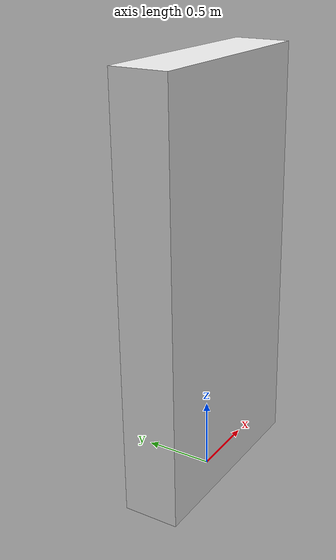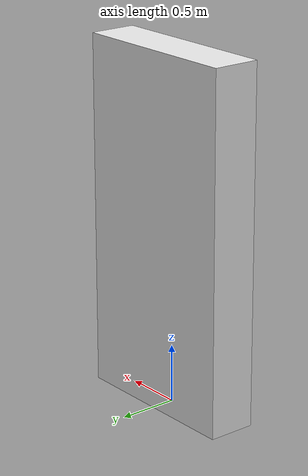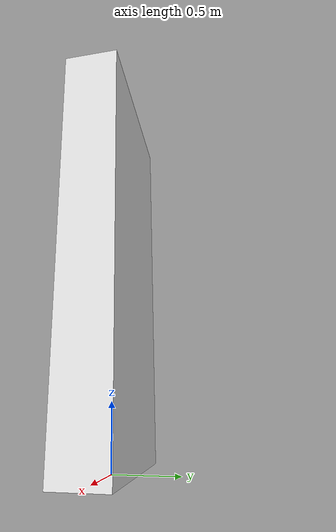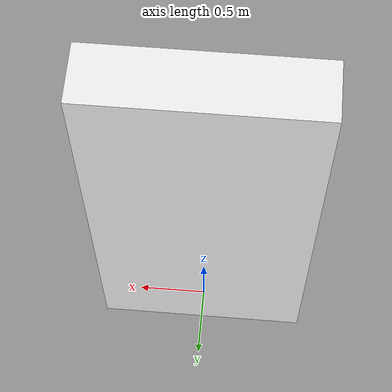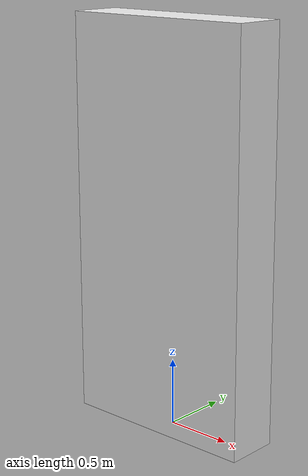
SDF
<?xml version="1.0"?>
<sdf version="1.4">

    <model name="House">
        <static>true</static>
        <link name="house1">
        <pose> 0 0 1.5 0 0 0 </pose>

            <collision name="collision">
                <geometry>
                    <box>
                        <size> 1.5  0.4  3 </size>
                    </box>
                </geometry>

            </collision>

            <visual  name="visual">
                <geometry>
                    <box>
                        <size> 1.5  0.4   3</size>
                    </box>
                </geometry>

                <material>
                    <script>
                       <uri>file://media/materials/scripts/gazebo.material
                       </uri>
                        <name>Gazebo/White</name>
                    </script>
                </material>
            </visual>
        </link>
    </model>
</sdf>
